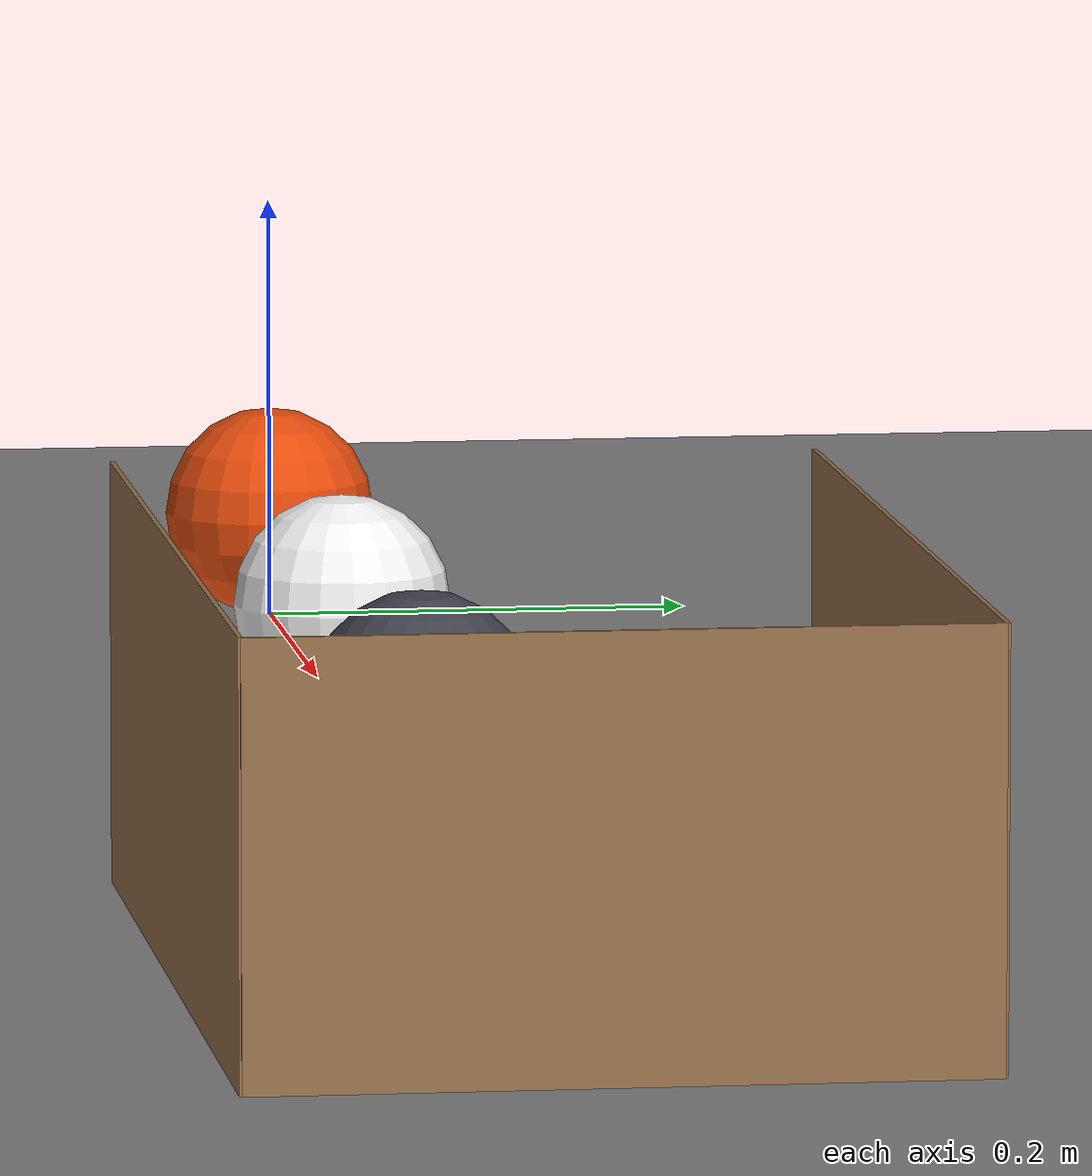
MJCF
<mujoco model="three_balls_roll_into_a_cup">
  <compiler angle="radian"/>
  <option timestep="0.002"/>
  <worldbody>
    <geom name="floor" type="plane" size="4 4 0.1" friction="0.8 0.001 0.0002"/>
    <body name="ball1" pos="0 0 0.05">
      <freejoint/>
      <geom name="ball1" type="sphere" pos="0 0 0" size="0.05" mass="0.2" condim="6" friction="0.8 0.001 0.0002" solref="0.01 0.2" rgba="0.9 0.3 0.05 1"/>
    </body>
    <body name="ball2" pos="0.3 0 0.05">
      <freejoint/>
      <geom name="ball2" type="sphere" pos="0 0 0" size="0.05" mass="0.2" condim="6" friction="0.8 0.001 0.0002" solref="0.01 0.2" rgba="0.95 0.95 0.95 1"/>
    </body>
    <body name="ball3" pos="0.6 0 0.05">
      <freejoint/>
      <geom name="ball3" type="sphere" pos="0 0 0" size="0.05" mass="0.2" condim="6" friction="0.8 0.001 0.0002" solref="0.01 0.2" rgba="0.25 0.25 0.3 1"/>
    </body>
    <body name="cup">
      <geom name="cup_base" type="box" pos="1 0 0.0005" size="0.25 0.15 0.0005" friction="0.8 0.01 0.004" solref="0.01 1" rgba="0.6 0.45 0.3 1"/>
      <geom name="cup_near_wall" type="box" pos="0.75 0 0.0005" size="0.001 0.15 0.0005" friction="0.8 0.01 0.004" solref="0.01 1" rgba="0.6 0.45 0.3 1"/>
      <geom name="cup_far_wall" type="box" pos="1.25 0 0.09" size="0.001 0.15 0.09" friction="0.8 0.01 0.004" solref="0.01 1" rgba="0.6 0.45 0.3 1"/>
      <geom name="cup_left_wall" type="box" pos="1 0.15 0.09" size="0.25 0.001 0.09" friction="0.8 0.01 0.004" solref="0.01 1" rgba="0.6 0.45 0.3 1"/>
      <geom name="cup_right_wall" type="box" pos="1 -0.15 0.09" size="0.25 0.001 0.09" friction="0.8 0.01 0.004" solref="0.01 1" rgba="0.6 0.45 0.3 1"/>
    </body>
  </worldbody>
  <keyframe>
    <key name="start" qpos="0 0 0.05 1 0 0 0 0.3 0 0.05 1 0 0 0 0.6 0 0.05 1 0 0 0" qvel="1.2 0 0 0 24 0 0 0 0 0 0 0 0 0 0 0 0 0"/>
  </keyframe>
</mujoco>
